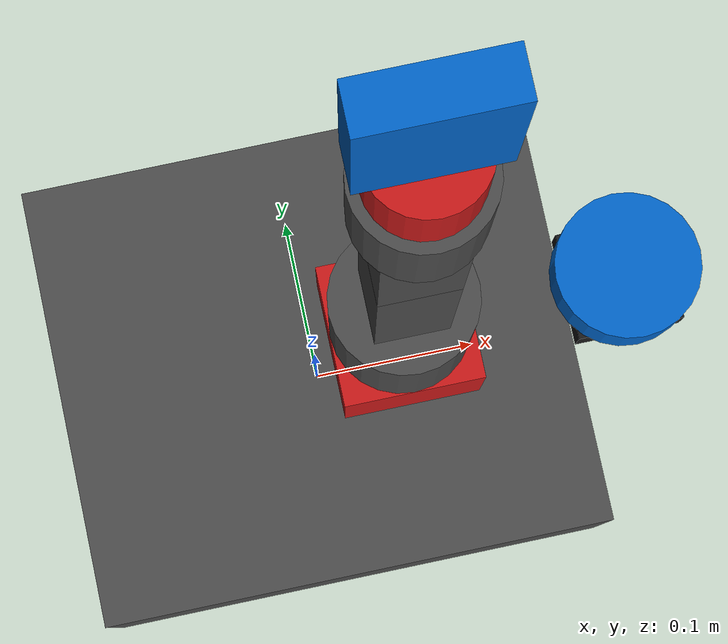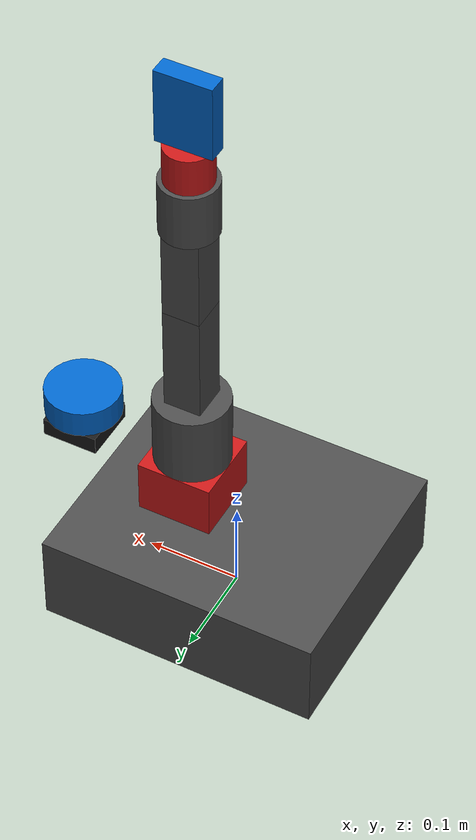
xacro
<?xml version="1.0"?>
<robot name="armbot" xmlns:xacro="http://www.ros.org/wiki/xacro">

  <!-- Materials                                                          -->
  <material name="black">
    <color rgba="0.1 0.1 0.1 1.0"/>
  </material>
  <material name="dark_grey">
    <color rgba="0.3 0.3 0.3 1.0"/>
  </material>
  <material name="blue">
    <color rgba="0.0 0.4 0.8 1.0"/>
  </material>
  <material name="red">
    <color rgba="0.8 0.1 0.1 1.0"/>
  </material>

  <!-- Macros for inertial (simplified box inertia)                       -->
  <xacro:macro name="box_inertial" params="mass x y z">
    <inertial>
      <origin xyz="0 0 0" rpy="0 0 0"/>
      <mass value="${mass}"/>
      <inertia
        ixx="${mass * (y*y + z*z) / 12.0}"
        iyy="${mass * (x*x + z*z) / 12.0}"
        izz="${mass * (x*x + y*y) / 12.0}"
        ixy="0.0" ixz="0.0" iyz="0.0"/>
    </inertial>
  </xacro:macro>

  <!-- base_link — chassis center at ground level                         -->
  <!-- Mecanum chassis: approx 0.30m (L) x 0.26m (W) x 0.10m (H)        -->
  <link name="base_link">
    <visual>
      <origin xyz="0 0 0.05" rpy="0 0 0"/>
      <geometry>
        <box size="0.30 0.26 0.10"/>
      </geometry>
      <material name="dark_grey"/>
    </visual>
    <collision>
      <origin xyz="0 0 0.05" rpy="0 0 0"/>
      <geometry>
        <box size="0.30 0.26 0.10"/>
      </geometry>
    </collision>
    <xacro:box_inertial mass="5.0" x="0.30" y="0.26" z="0.10"/>
  </link>

  <!-- base_lidar_link — LiDAR mounting plate above chassis               -->
  <joint name="base_lidar_joint" type="fixed">
    <parent link="base_link"/>
    <child link="base_lidar_link"/>
    <origin xyz="0.175 0 0.15" rpy="0 0 0"/>
  </joint>

  <link name="base_lidar_link">
    <visual>
      <origin xyz="0 0 0" rpy="0 0 0"/>
      <geometry>
        <box size="0.06 0.06 0.02"/>
      </geometry>
      <material name="black"/>
    </visual>
    <xacro:box_inertial mass="0.05" x="0.06" y="0.06" z="0.02"/>
  </link>

  <!-- laser — LiDAR scan frame                                           -->
  <!-- YDLIDAR typical: zero-angle points forward (+X), CCW rotation      -->
  <!-- 8-29: 曾误判雷达装反 180° 加 yaw=π 补偿，实测车头指示反向，撤销恢复 0 -->
  <joint name="laser_joint" type="fixed">
    <parent link="base_lidar_link"/>
    <child link="laser"/>
    <origin xyz="0 0 0.03" rpy="0 0 0"/>
  </joint>

  <link name="laser">
    <visual>
      <origin xyz="0 0 0" rpy="0 0 0"/>
      <geometry>
        <cylinder radius="0.04" length="0.03"/>
      </geometry>
      <material name="blue"/>
    </visual>
    <xacro:box_inertial mass="0.15" x="0.08" y="0.08" z="0.03"/>
  </link>

  <!-- arm_base_link — arm mounting point on chassis                      -->
  <joint name="arm_base_joint" type="fixed">
    <parent link="base_link"/>
    <child link="arm_base_link"/>
    <origin xyz="0.05 0 0.10" rpy="0 0 0"/>
  </joint>

  <link name="arm_base_link">
    <visual>
      <origin xyz="0 0 0.03" rpy="0 0 0"/>
      <geometry>
        <box size="0.08 0.08 0.06"/>
      </geometry>
      <material name="red"/>
    </visual>
    <xacro:box_inertial mass="0.3" x="0.08" y="0.08" z="0.06"/>
  </link>

  <!-- Arm joints — published by action_pkg via /joint_states             -->
  <!-- Real transforms come from robot_state_publisher + /joint_states.   -->
  <!-- These joints define the kinematic chain for visualization.         -->

  <!-- joint_1_base -->
  <joint name="joint_1_base" type="revolute">
    <parent link="arm_base_link"/>
    <child link="link_1"/>
    <origin xyz="0 0 0.06" rpy="0 0 0"/>
    <axis xyz="0 0 1"/>
    <limit effort="10" lower="-3.14159" upper="3.14159" velocity="3.0"/>
  </joint>
  <link name="link_1">
    <visual>
      <origin xyz="0 0 0.04" rpy="0 0 0"/>
      <geometry>
        <cylinder radius="0.04" length="0.08"/>
      </geometry>
      <material name="dark_grey"/>
    </visual>
    <xacro:box_inertial mass="0.2" x="0.08" y="0.08" z="0.08"/>
  </link>

  <!-- joint_2_shoulder -->
  <joint name="joint_2_shoulder" type="revolute">
    <parent link="link_1"/>
    <child link="link_2"/>
    <origin xyz="0 0 0.08" rpy="0 0 0"/>
    <axis xyz="0 1 0"/>
    <limit effort="10" lower="-3.14159" upper="3.14159" velocity="3.0"/>
  </joint>
  <link name="link_2">
    <visual>
      <origin xyz="0 0 0.06" rpy="0 0 0"/>
      <geometry>
        <box size="0.04 0.04 0.12"/>
      </geometry>
      <material name="dark_grey"/>
    </visual>
    <xacro:box_inertial mass="0.25" x="0.04" y="0.04" z="0.12"/>
  </link>

  <!-- joint_3_elbow -->
  <joint name="joint_3_elbow" type="revolute">
    <parent link="link_2"/>
    <child link="link_3"/>
    <origin xyz="0 0 0.12" rpy="0 0 0"/>
    <axis xyz="0 1 0"/>
    <limit effort="10" lower="-3.14159" upper="3.14159" velocity="3.0"/>
  </joint>
  <link name="link_3">
    <visual>
      <origin xyz="0 0 0.05" rpy="0 0 0"/>
      <geometry>
        <box size="0.04 0.04 0.10"/>
      </geometry>
      <material name="dark_grey"/>
    </visual>
    <xacro:box_inertial mass="0.2" x="0.04" y="0.04" z="0.10"/>
  </link>

  <!-- joint_4_wrist_pitch -->
  <joint name="joint_4_wrist_pitch" type="revolute">
    <parent link="link_3"/>
    <child link="link_4"/>
    <origin xyz="0 0 0.10" rpy="0 0 0"/>
    <axis xyz="0 1 0"/>
    <limit effort="5" lower="-3.14159" upper="3.14159" velocity="3.0"/>
  </joint>
  <link name="link_4">
    <visual>
      <origin xyz="0 0 0.03" rpy="0 0 0"/>
      <geometry>
        <cylinder radius="0.03" length="0.06"/>
      </geometry>
      <material name="dark_grey"/>
    </visual>
    <xacro:box_inertial mass="0.1" x="0.06" y="0.06" z="0.06"/>
  </link>

  <!-- joint_5_wrist_roll -->
  <joint name="joint_5_wrist_roll" type="revolute">
    <parent link="link_4"/>
    <child link="link_5"/>
    <origin xyz="0 0 0.06" rpy="0 0 0"/>
    <axis xyz="0 0 1"/>
    <limit effort="5" lower="-3.14159" upper="3.14159" velocity="3.0"/>
  </joint>
  <link name="link_5">
    <visual>
      <origin xyz="0 0 0.02" rpy="0 0 0"/>
      <geometry>
        <cylinder radius="0.025" length="0.04"/>
      </geometry>
      <material name="red"/>
    </visual>
    <xacro:box_inertial mass="0.05" x="0.05" y="0.05" z="0.04"/>
  </link>

  <!-- gripper -->
  <joint name="gripper" type="revolute">
    <parent link="link_5"/>
    <child link="gripper_link"/>
    <origin xyz="0 0 0.04" rpy="0 0 0"/>
    <axis xyz="0 1 0"/>
    <limit effort="3" lower="-0.785" upper="0.785" velocity="2.0"/>
  </joint>
  <link name="gripper_link">
    <visual>
      <origin xyz="0 0 0.04" rpy="0 0 0"/>
      <geometry>
        <box size="0.06 0.02 0.08"/>
      </geometry>
      <material name="blue"/>
    </visual>
    <xacro:box_inertial mass="0.08" x="0.06" y="0.02" z="0.08"/>
  </link>

</robot>
